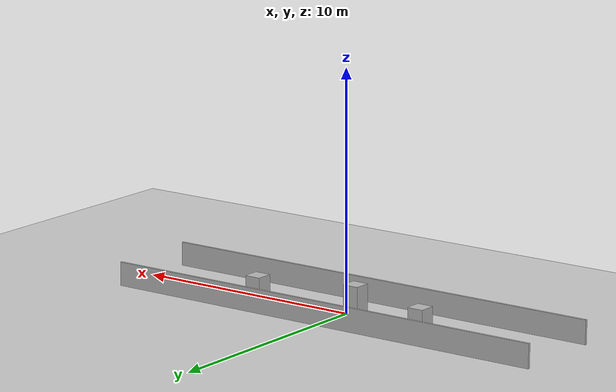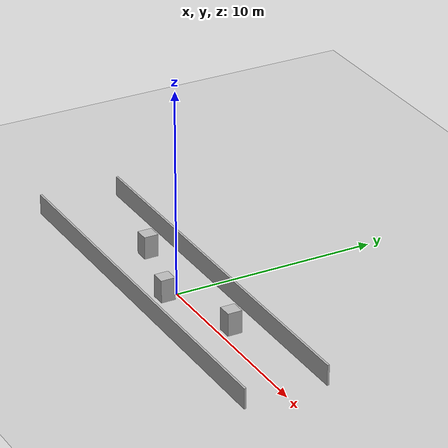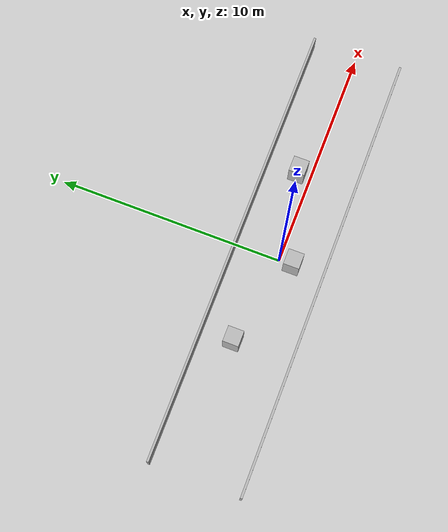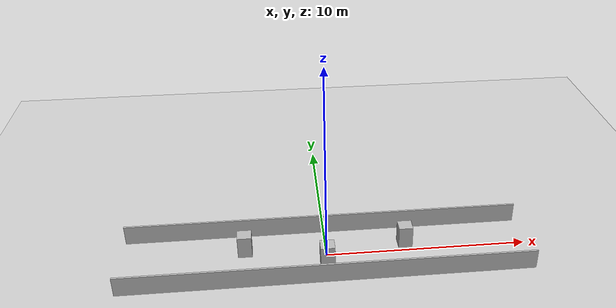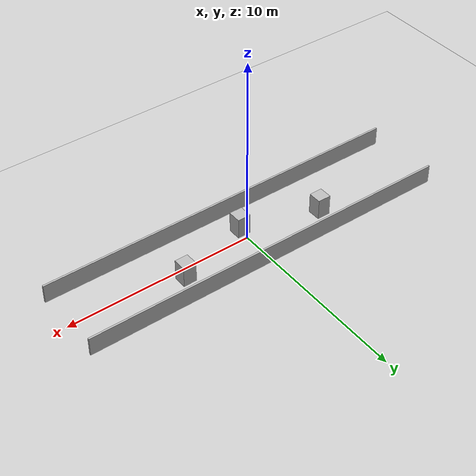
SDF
<?xml version="1.0" ?>
<sdf version="1.6">
  <world name="occlusion">
    <physics type="ode">
      <max_step_size>0.01</max_step_size>
      <real_time_factor>1</real_time_factor>
      <real_time_update_rate>100</real_time_update_rate>
    </physics>
    <gui><camera name="user_camera"><pose>-3 -12 8 0 0.9 1.57</pose></camera></gui>

    <include><uri>model://sun</uri></include>
    <include><uri>model://ground_plane</uri></include>

    <model name="w_n">
      <static>true</static><pose>0 2 0.5 0 0 0</pose>
      <link name="link">
        <collision name="c"><geometry><box><size>20 0.1 1.0</size></box></geometry></collision>
        <visual name="v"><geometry><box><size>20 0.1 1.0</size></box></geometry></visual>
      </link>
    </model>
    <model name="w_s">
      <static>true</static><pose>0 -2 0.5 0 0 0</pose>
      <link name="link">
        <collision name="c"><geometry><box><size>20 0.1 1.0</size></box></geometry></collision>
        <visual name="v"><geometry><box><size>20 0.1 1.0</size></box></geometry></visual>
      </link>
    </model>

    <!-- Three shoulder-height boxes offset from the centre line: 0.7 m wide,
         positioned so a robot following ~2 m behind the target loses LOS. -->
    <model name="occluder_1">
      <static>true</static><pose>-4 0.6 0.5 0 0 0</pose>
      <link name="link">
        <collision name="c"><geometry><box><size>0.7 0.7 1.2</size></box></geometry></collision>
        <visual name="v"><geometry><box><size>0.7 0.7 1.2</size></box></geometry></visual>
      </link>
    </model>
    <model name="occluder_2">
      <static>true</static><pose>0 -0.6 0.5 0 0 0</pose>
      <link name="link">
        <collision name="c"><geometry><box><size>0.7 0.7 1.2</size></box></geometry></collision>
        <visual name="v"><geometry><box><size>0.7 0.7 1.2</size></box></geometry></visual>
      </link>
    </model>
    <model name="occluder_3">
      <static>true</static><pose>4 0.6 0.5 0 0 0</pose>
      <link name="link">
        <collision name="c"><geometry><box><size>0.7 0.7 1.2</size></box></geometry></collision>
        <visual name="v"><geometry><box><size>0.7 0.7 1.2</size></box></geometry></visual>
      </link>
    </model>

  </world>
</sdf>
